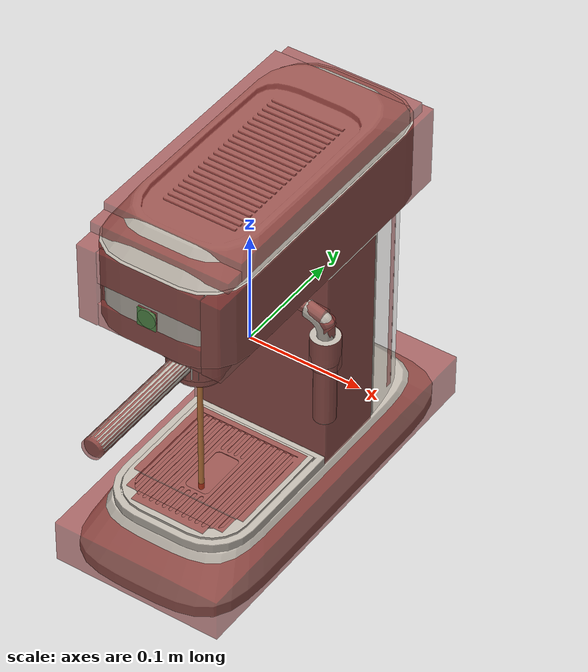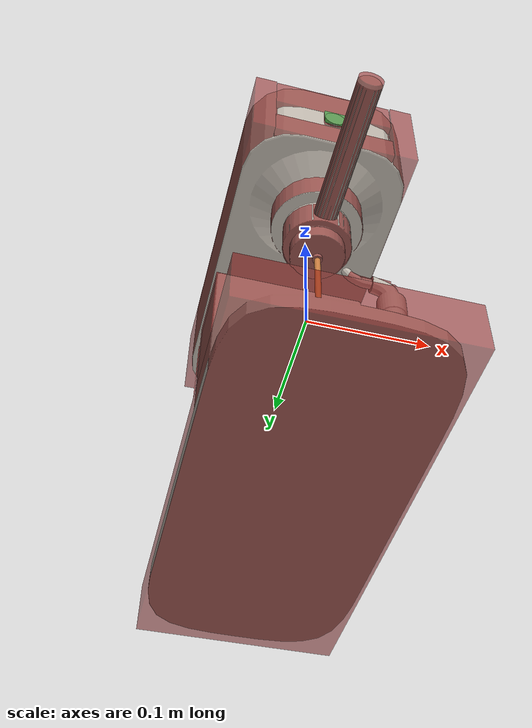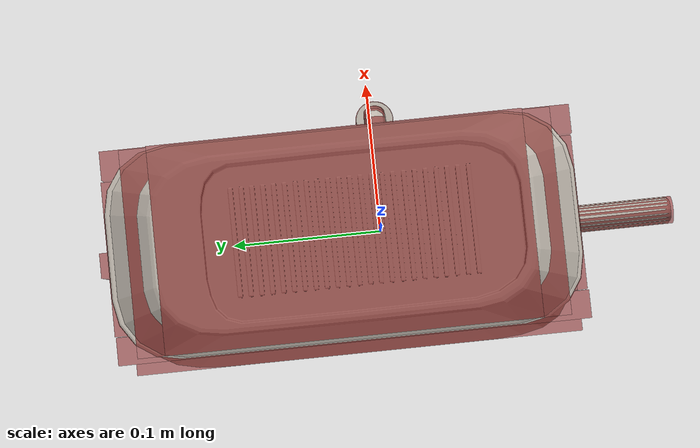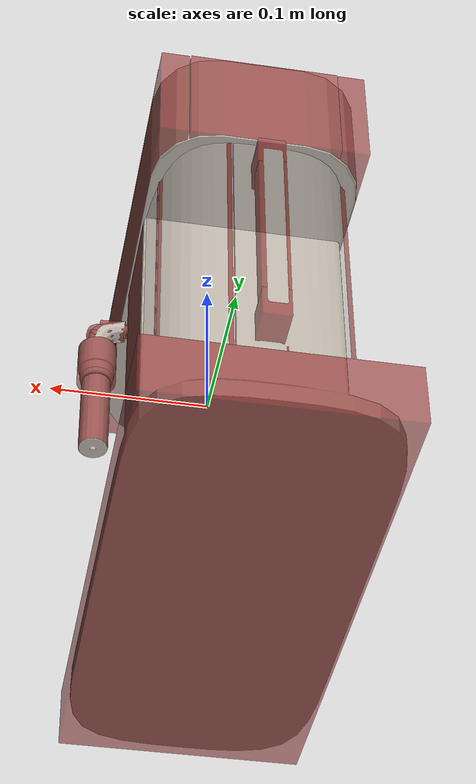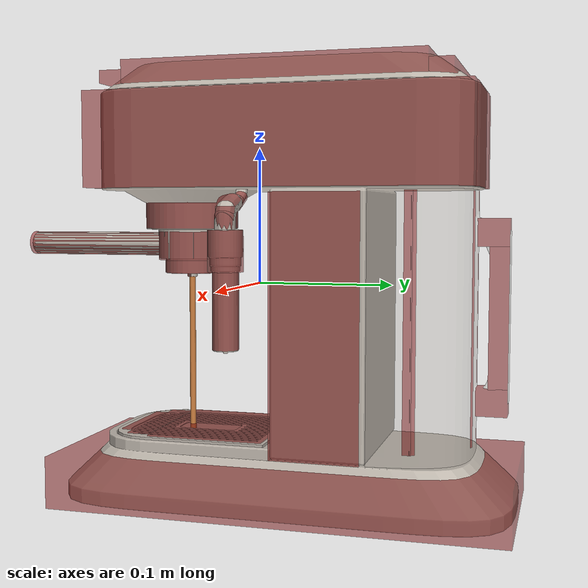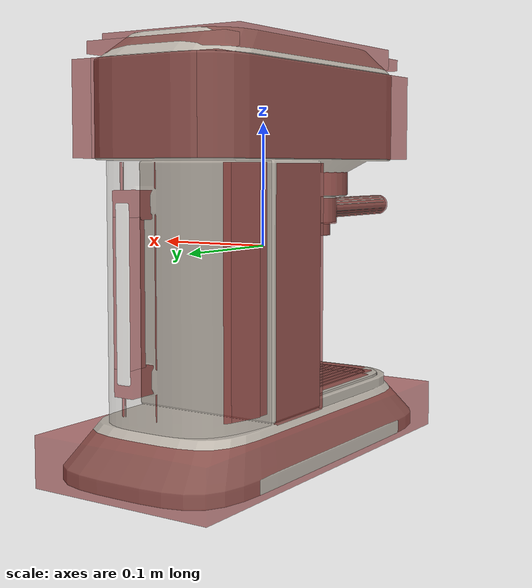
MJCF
<?xml version='1.0' encoding='UTF-8'?>
<mujoco model="model">
  <compiler angle="radian"/>
  <asset>
    <mesh file="visuals/Body001.obj" name="Body001_vis"/>
    <mesh file="visuals/Button001.obj" name="Button001_vis"/>
    <mesh file="visuals/Container001_Clear.obj" name="Container001_Clear_vis"/>
    <mesh file="visuals/Lever001.obj" name="Lever001_vis"/>
    <mesh file="visuals/Lever002.obj" name="Lever002_vis"/>
    <mesh file="visuals/Lid001.obj" name="Lid001_vis"/>
    <mesh file="visuals/Lid002.obj" name="Lid002_vis"/>
    <texture file="visuals/T_BC001.png" name="Body001_material" type="2d"/>
    <material name="Body001_material" rgba="1 1 1 1.0" texture="Body001_material" shininess="0.5" specular="0.3103448502657381"/>
    <texture file="visuals/T_BC001.png" name="Button001_material" type="2d"/>
    <material name="Button001_material" rgba="1 1 1 1.0" texture="Button001_material" shininess="0.5" specular="0.3103448502657381"/>
    <texture file="visuals/T_BC001.png" name="Container001_Clear_material" type="2d"/>
    <material name="Container001_Clear_material" rgba="1 1 1 0.30000001192092896" texture="Container001_Clear_material" shininess="0.5" specular="0.3103448502657381"/>
    <texture file="visuals/T_BC001.png" name="Lever001_material" type="2d"/>
    <material name="Lever001_material" rgba="1 1 1 1.0" texture="Lever001_material" shininess="0.5" specular="0.3103448502657381"/>
    <texture file="visuals/T_BC001.png" name="Lever002_material" type="2d"/>
    <material name="Lever002_material" rgba="1 1 1 1.0" texture="Lever002_material" shininess="0.5" specular="0.3103448502657381"/>
    <texture file="visuals/T_BC001.png" name="Lid001_material" type="2d"/>
    <material name="Lid001_material" rgba="1 1 1 1.0" texture="Lid001_material" shininess="0.5" specular="0.3103448502657381"/>
    <texture file="visuals/T_BC001.png" name="Lid002_material" type="2d"/>
    <material name="Lid002_material" rgba="1 1 1 1.0" texture="Lid002_material" shininess="0.5" specular="0.3103448502657381"/>
  </asset>
  <default>
    <default class="visual">
      <geom conaffinity="0" contype="0" group="1" type="mesh"/>
    </default>
    <default class="collision">
      <geom group="0" rgba="0.5 0 0 0.5"/>
    </default>
    <default class="spawn">
      <geom group="0" rgba="1 1 1 0.5" contype="0" conaffinity="0"/>
      <site group="0" rgba="1 1 1 0.5"/>
    </default>
    <default class="region">
      <geom group="1" conaffinity="0" contype="0" rgba="0 1 0 0"/>
    </default>
  </default>
  <worldbody>
    <body>
      <body name="object">
        <geom class="collision" type="box" pos="-0.00836301688104868 -0.11903314292430878 0.10111013799905777" size="0.008210549131035805 0.00046295273932628334 0.008210545405745506" quat="1.0 0.0 0.0 0.0" name="start_button" rgba="0.0 0.5 0 0.5"/>
        <site type="cylinder" rgba="0.8 0.5 0.25 1" size="0.0022938279435038567 0.06303506344556808" pos="-0.0066776820458471775 -0.056704774498939514 -0.05430787056684494" name="coffee_liquid"/>
        <site rgba="0 0 0 0" size="0.009999999776482582 0.009999999776482582" pos="-0.0066776820458471775 -0.056704774498939514 -0.10318657755851746" name="receptacle_place_site"/>
        <geom mesh="Body001_vis" type="mesh" solimp="0.998 0.998 0.001" solref="0.001 1" density="100" friction="0.95 0.3 0.1" class="visual" material="Body001_material"/>
        <geom class="collision" type="box" pos="-0.006504769902676344 0.023548144847154617 -0.14619018137454987" size="0.07601921260356903 0.16820847988128662 0.019411172717809677" quat="1.0 0.0 0.0 0.0"/>
        <geom class="collision" type="box" pos="-0.00715978117659688 0.054870255291461945 -0.028440389782190323" size="0.062359265983104706 0.03253987058997154 0.09566692262887955" quat="1.0 0.0 0.0 0.0"/>
        <geom class="collision" type="box" pos="-0.0628289133310318 0.022478856146335602 0.10572987049818039" size="0.008341582491993904 0.14019247889518738 0.03504960983991623" quat="1.0 0.0 0.0 0.0"/>
        <geom class="collision" type="box" pos="0.04762742295861244 0.022478856146335602 0.10572987049818039" size="0.008688242174685001 0.14019282162189484 0.035049695521593094" quat="1.0 0.0 0.0 0.0"/>
        <geom class="collision" type="box" pos="-0.008083335123956203 0.15508964657783508 0.10572987049818039" size="0.045879486948251724 0.00815002340823412 0.035049695521593094" quat="1.0 0.0 0.0 0.0"/>
        <geom class="collision" type="box" pos="-0.008083335123956203 -0.079786017537117 0.10572987049818039" size="0.045879486948251724 0.03117929771542549 0.035049695521593094" quat="1.0 0.0 0.0 0.0"/>
        <geom class="collision" type="cylinder" pos="-0.00657233502715826 -0.056700922548770905 0.05477345362305641" size="0.03532037138938904 0.014001145958900452" quat="1.0 0.0 0.0 0.0"/>
        <geom class="collision" type="box" pos="-0.008083335123956203 0.05000942200422287 0.08713096380233765" size="0.050805311650037766 0.1030418649315834 0.012999329715967178" quat="1.0 0.0 0.0 0.0"/>
        <geom class="collision" type="box" pos="-0.008083335123956203 -0.11394104361534119 0.12617219984531403" size="0.045879486948251724 0.0030814697965979576 0.014437099918723106" quat="1.0 0.0 0.0 0.0"/>
        <geom class="collision" type="box" pos="-0.008083335123956203 -0.11394104361534119 0.08110352605581284" size="0.045879486948251724 0.0030814697965979576 0.010526838712394238" quat="1.0 0.0 0.0 0.0"/>
        <body name="Button001">
          <joint axis="0.0 1.0 0.0" pos="-0.00836301688104868 -0.11765086650848389 0.10111013799905777" limited="true" name="Button001_joint" range="0.0 0.0015" type="slide" damping="1" frictionloss="1" armature=".01" stiffness="0.05"/>
          <geom mesh="Button001_vis" type="mesh" solimp="0.998 0.998 0.001" solref="0.001 1" density="100" friction="0.95 0.3 0.1" class="visual" material="Button001_material"/>
          <geom class="collision" type="box" pos="-0.00836301688104868 -0.11726473271846771 0.10111013799905777" size="0.008210549131035805 0.00046295273932628334 0.008210545405745506" quat="1.0 0.0 0.0 0.0"/>
        </body>
        <body name="Container001_Clear">
          <geom mesh="Container001_Clear_vis" type="mesh" solimp="0.998 0.998 0.001" solref="0.001 1" density="100" friction="0.95 0.3 0.1" class="visual" material="Container001_Clear_material"/>
          <geom class="collision" type="box" pos="-0.004831687081605196 0.09552019089460373 -0.022207479923963547" size="0.05731445923447609 0.0024814626667648554 0.0901176780462265" quat="1.0 0.0 0.0 0.0"/>
          <geom class="collision" type="box" pos="0.04841240122914314 0.10814650356769562 -0.022207481786608696" size="0.002481452887877822 0.014109772630035877 0.09011705219745636" quat="1.0 0.0 0.0 0.0"/>
          <geom class="collision" type="box" pos="0.041757456958293915 0.1323014795780182 -0.022207481786608696" size="0.014109834097325802 0.002481462899595499 0.0901176780462265" quat="0.5000000596046448 0.0 0.0 0.8660253882408142"/>
          <geom class="collision" type="box" pos="0.02450389601290226 0.15091069042682648 -0.022207481786608696" size="0.014109834097325802 0.0024814626667648554 0.0901176780462265" quat="0.2588190734386444 0.0 0.0 0.9659258127212524"/>
          <geom class="collision" type="box" pos="-0.0018694031750783324 0.1568261981010437 -0.022207481786608696" size="0.014109793119132519 0.0024814566131681204 0.09011708945035934" quat="1.0 0.0 0.0 0.0"/>
          <geom class="collision" type="box" pos="-0.029066001996397972 0.15412038564682007 -0.022207481786608696" size="0.014109834097325802 0.0024814626667648554 0.0901176780462265" quat="0.13052648305892944 0.0 0.0 -0.9914448261260986"/>
          <geom class="collision" type="box" pos="-0.05006694048643112 0.14232823252677917 -0.022207481786608696" size="0.014109835028648376 0.0024814626667648554 0.0901176780462265" quat="0.382683664560318 0.0 0.0 -0.9238794445991516"/>
          <geom class="collision" type="box" pos="-0.06202181428670883 0.12062888592481613 -0.022207481786608696" size="0.014109834097325802 0.002481462201103568 0.0901176780462265" quat="0.6087616086006165 0.0 0.0 -0.7933531999588013"/>
          <geom class="collision" type="box" pos="-0.06434693932533264 0.1022540032863617 -0.022207481786608696" size="0.0024814587086439133 0.009297686628997326 0.0901176780462265" quat="1.0 0.0 0.0 0.0"/>
          <geom class="collision" type="box" pos="-0.004831687081605196 0.12498673796653748 -0.1159510463476181" size="0.024940354749560356 0.03203621134161949 0.004019323270767927" quat="1.0 0.0 0.0 0.0"/>
          <geom class="collision" type="box" pos="0.02722848765552044 0.11932884156703949 -0.1159510463476181" size="0.006713829934597015 0.026378314942121506 0.004019323270767927" quat="1.0 0.0 0.0 0.0"/>
          <geom class="collision" type="box" pos="0.04111466184258461 0.10761237889528275 -0.1159510463476181" size="0.006713829934597015 0.014661852270364761 0.004019323270767927" quat="1.0 0.0 0.0 0.0"/>
          <geom class="collision" type="box" pos="-0.053195614367723465 0.10761237889528275 -0.1159510463476181" size="0.006713829934597015 0.014661852270364761 0.004019323270767927" quat="1.0 0.0 0.0 0.0"/>
          <geom class="collision" type="box" pos="-0.03800760582089424 0.11932884156703949 -0.1159510463476181" size="0.006713829934597015 0.026378314942121506 0.004019323270767927" quat="1.0 0.0 0.0 0.0"/>
          <geom class="collision" type="box" pos="-0.006564273498952389 0.17193420231342316 0.03880826011300087" size="0.008135618641972542 0.011172735132277012 0.009987392462790012" quat="1.0 0.0 0.0 0.0"/>
          <geom class="collision" type="box" pos="-0.006564273498952389 0.17193420231342316 -0.0823163390159607" size="0.008135618641972542 0.011172735132277012 0.009987392462790012" quat="1.0 0.0 0.0 0.0"/>
          <geom class="collision" type="box" pos="-0.006564273498952389 0.17622022330760956 -0.02106543630361557" size="0.008135618641972542 0.006886720657348633 0.05181831866502762" quat="1.0 0.0 0.0 0.0"/>
        </body>
        <body name="Lever001">
          <joint axis="0.0 0.0 1.0" pos="0.03350317105650902 -0.003288334235548973 0.07015018165111542" limited="true" name="Lever001_joint" range="-0.7853981633974483 0.4363323129985824" type="hinge" damping="1" frictionloss="1" armature=".01" stiffness="0.05"/>
          <geom mesh="Lever001_vis" type="mesh" solimp="0.998 0.998 0.001" solref="0.001 1" density="100" friction="0.95 0.3 0.1" class="visual" material="Lever001_material"/>
          <geom class="collision" type="cylinder" pos="0.07087936252355576 -0.003103220835328102 -0.014020519331097603" size="0.009284953586757183 0.027635788545012474" quat="7.549790126404332e-08 0.0 1.0 0.0"/>
          <geom class="collision" type="cylinder" pos="0.07087935507297516 -0.003103220835328102 0.02637883462011814" size="0.01239711232483387 0.0143367238342762" quat="7.549790126404332e-08 0.0 1.0 0.0"/>
          <geom class="collision" type="cylinder" pos="0.07122611254453659 -0.003103220835328102 0.04905574023723602" size="0.006843140348792076 0.007913795299828053" quat="7.549790126404332e-08 0.0 1.0 0.0"/>
          <geom class="collision" type="cylinder" pos="0.06817959994077682 -0.003103220835328102 0.05350833758711815" size="0.006843140348792076 0.007913794368505478" quat="0.4226183593273163 0.0 0.9063077569007874 0.0"/>
          <geom class="collision" type="cylinder" pos="0.06179364025592804 -0.003103220835328102 0.058605391532182693" size="0.006843140348792076 0.007913795299828053" quat="0.6755901575088501 0.0 0.7372773885726929 0.0"/>
          <geom class="collision" type="cylinder" pos="0.049063995480537415 -0.003103220835328102 0.060107070952653885" size="0.004716161172837019 0.005454036872833967" quat="0.6755901575088501 0.0 0.7372773885726929 0.0"/>
          <geom class="collision" type="cylinder" pos="0.04076148197054863 -0.003103220835328102 0.06176384910941124" size="0.004716160707175732 0.0054540373384952545" quat="0.5372996926307678 0.0 0.8433914184570312 0.0"/>
        </body>
        <body name="Lever002">
          <joint axis="0.0 0.0 1.0" pos="-0.0066776820458471775 -0.056704774498939514 0.02310488559305668" limited="true" name="Lever002_joint" range="-0.7853981633974483 0.7853981633974483" type="hinge" damping="1" frictionloss="1" armature=".01" stiffness="0.05"/>
          <geom mesh="Lever002_vis" type="mesh" solimp="0.998 0.998 0.001" solref="0.001 1" density="100" friction="0.95 0.3 0.1" class="visual" material="Lever002_material"/>
          <geom class="collision" type="cylinder" pos="-0.0067075202241539955 -0.05666205286979675 0.011899043805897236" size="0.020789997652173042 0.005341934971511364" quat="7.549790126404332e-08 0.0 1.0 0.0"/>
          <geom class="collision" type="cylinder" pos="-0.006707523018121719 -0.05666205286979675 0.02742968685925007" size="0.025917505845427513 0.010802765376865864" quat="7.549790126404332e-08 0.0 1.0 0.0"/>
          <geom class="collision" type="cylinder" pos="-0.006707523018121719 -0.13573449850082397 0.02850009687244892" size="0.008944411762058735 0.05628896504640579" quat="5.338507946817117e-08 -5.338507236274381e-08 0.7071068286895752 0.7071067690849304"/>
          <geom class="collision" type="cylinder" pos="-0.0067075202241539955 -0.056732647120952606 0.00502181937918067" size="0.0037209989968687296 0.0015874640084803104" quat="7.549790126404332e-08 0.0 1.0 0.0"/>
        </body>
        <body name="Lid001">
          <joint axis="-1.0 0.0 0.0" pos="-0.006799257360398769 0.1593293994665146 0.14192348718643188" limited="true" name="Lid001_joint" range="0.0 1.5707963267948966" type="hinge" damping="1" frictionloss="1" armature=".01" stiffness="0.05"/>
          <geom mesh="Lid001_vis" type="mesh" solimp="0.998 0.998 0.001" solref="0.001 1" density="100" friction="0.95 0.3 0.1" class="visual" material="Lid001_material"/>
          <geom class="collision" type="box" pos="-0.006870087701827288 0.02219865284860134 0.15356475114822388" size="0.061074402183294296 0.10987981408834457 0.008295722305774689" quat="1.0 0.0 0.0 0.0"/>
          <geom class="collision" type="box" pos="-0.006870087701827288 0.14071445167064667 0.15016445517539978" size="0.06107446551322937 0.008376914076507092 0.004656855016946793" quat="1.0 0.0 0.0 0.0"/>
          <geom class="collision" type="box" pos="-0.006870087701827288 -0.0961022675037384 0.15016445517539978" size="0.06107447296380997 0.008376915007829666 0.004656855016946793" quat="1.0 0.0 0.0 0.0"/>
        </body>
        <body name="Lid002">
          <geom mesh="Lid002_vis" type="mesh" solimp="0.998 0.998 0.001" solref="0.001 1" density="100" friction="0.95 0.3 0.1" class="visual" material="Lid002_material"/>
          <geom class="collision" type="box" pos="-0.0070501090958714485 -0.02989211305975914 -0.11249539256095886" size="0.05150691419839859 0.04384595528244972 0.0010264408774673939" quat="1.0 0.0 0.0 0.0"/>
          <geom class="collision" type="box" pos="-0.0070501090958714485 -0.08370422571897507 -0.11249539256095886" size="0.04543045163154602 0.00841792393475771 0.0010264426236972213" quat="1.0 0.0 0.0 0.0"/>
          <geom class="collision" type="box" pos="-0.0070501090958714485 -0.09707712382078171 -0.11249539256095886" size="0.033670127391815186 0.004860409535467625 0.0010264426236972213" quat="1.0 0.0 0.0 0.0"/>
        </body>
        <geom class="region" name="reg_main" type="box" pos="0.0 0.023111626505851746 0.0" size="0.08386891877651215 0.1686200032234192 0.16181476211547852"/>
      </body>
    </body>
  </worldbody>
  <actuator>
    <motor name="Button001_joint_actuator" joint="Button001_joint" gear="0.5"/>
    <motor name="Lever001_joint_actuator" joint="Lever001_joint" gear="10"/>
    <motor name="Lever002_joint_actuator" joint="Lever002_joint" gear="10"/>
    <motor name="Lid001_joint_actuator" joint="Lid001_joint" gear="10"/>
  </actuator>
</mujoco>
